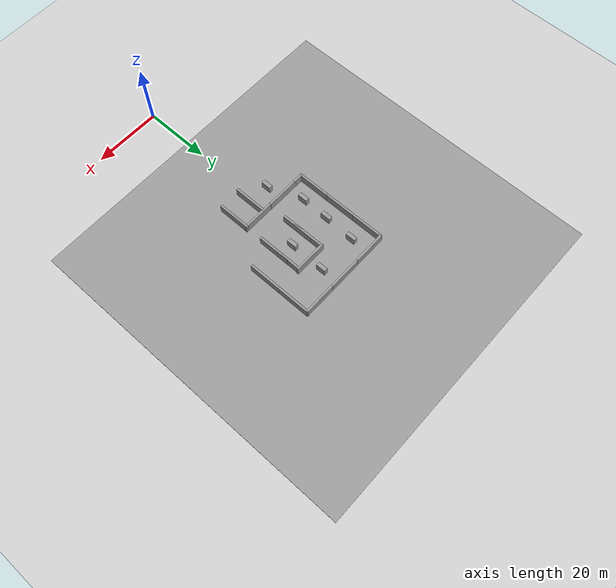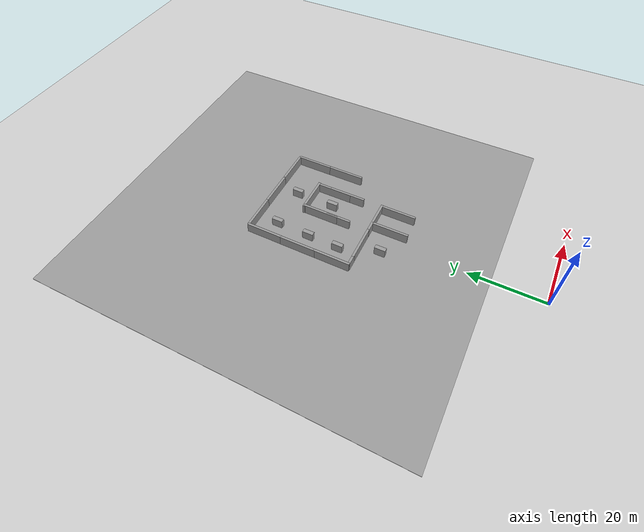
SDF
<sdf version="1.7">
 <world name="default">
  <model name="ground_plane">
   <static>1</static>
   <link name="link">
    <collision name="collision">
     <geometry><plane><normal>0 0 1</normal><size>100 100</size></plane></geometry>
     <surface><friction><ode><mu>100</mu><mu2>50</mu2></ode></friction></surface>
    </collision>
    <visual name="visual">
     <cast_shadows>0</cast_shadows>
     <geometry><plane><normal>0 0 1</normal><size>100 100</size></plane></geometry>
     <material>
      <script><uri>file://media/materials/scripts/gazebo.material</uri><name>Gazebo/Grey</name></script>
     </material>
    </visual>
   </link>
  </model>
  <model name="ground_plane_1">
   <static>1</static>
   <link name="link">
    <collision name="collision">
     <geometry><plane><normal>0 0 1</normal><size>100 100</size></plane></geometry>
     <surface>
      <contact><collide_bitmask>65535</collide_bitmask></contact>
      <friction><ode><mu>100</mu><mu2>50</mu2></ode></friction>
     </surface>
    </collision>
    <visual name="visual">
     <cast_shadows>0</cast_shadows>
     <geometry><plane><normal>0 0 1</normal><size>100 100</size></plane></geometry>
     <material>
      <script><uri>file://media/materials/scripts/gazebo.material</uri><name>Gazebo/Grey</name></script>
     </material>
    </visual>
   </link>
   <pose>-0.115157 63.9735 0 0 -0 0</pose>
  </model>
  <model name="grey_wall_hou_clone_clone_3_clone_0_clone_1_clone">
   <link name="link">
    <pose>0 0 1.37589 0 -0 0</pose>
    <inertial>
     <inertia><ixx>0</ixx><ixy>0</ixy><ixz>0</ixz><iyy>0</iyy><iyz>0</iyz><izz>0</izz></inertia>
     <mass>0</mass>
    </inertial>
    <visual name="visual">
     <cast_shadows>0</cast_shadows>
     <geometry><box><size>9.82221 0.642976 2.8</size></box></geometry>
     <material>
      <script>
       <uri>model://grey_wall/materials/scripts</uri>
       <uri>model://grey_wall/materials/textures</uri>
       <name>vrc/grey_wall</name>
      </script>
      <shader type="pixel"><normal_map>__default__</normal_map></shader>
      <ambient>1 1 1 1</ambient>
      <diffuse>1 1 1 1</diffuse>
      <specular>0 0 0 1</specular>
      <emissive>0 0 0 1</emissive>
     </material>
    </visual>
    <collision name="collision">
     <geometry><box><size>9.82221 0.642976 2.8</size></box></geometry>
     <surface>
      <friction>
       <ode><mu>1</mu><mu2>1</mu2><fdir1>0 0 0</fdir1><slip1>0</slip1><slip2>0</slip2></ode>
       <torsional>
        <coefficient>1</coefficient>
        <patch_radius>0</patch_radius>
        <surface_radius>0</surface_radius>
        <use_patch_radius>1</use_patch_radius>
        <ode><slip>0</slip></ode>
       </torsional>
      </friction>
      <bounce><restitution_coefficient>0</restitution_coefficient><threshold>1e+06</threshold></bounce>
      <contact>
       <collide_without_contact>0</collide_without_contact>
       <collide_without_contact_bitmask>1</collide_without_contact_bitmask>
       <collide_bitmask>1</collide_bitmask>
       <ode>
        <soft_cfm>0</soft_cfm>
        <soft_erp>0.2</soft_erp>
        <kp>1e+13</kp>
        <kd>1</kd>
        <max_vel>0.01</max_vel>
        <min_depth>0</min_depth>
       </ode>
       <bullet>
        <split_impulse>1</split_impulse>
        <split_impulse_penetration_threshold>-0.01</split_impulse_penetration_threshold>
        <soft_cfm>0</soft_cfm>
        <soft_erp>0.2</soft_erp>
        <kp>1e+13</kp>
        <kd>1</kd>
       </bullet>
      </contact>
     </surface>
    </collision>
   </link>
   <static>1</static>
   <pose>-0.06228 60.209 0 0 0 -1.56855</pose>
  </model>
  <model name="grey_wall_hou_clone_clone_3_clone_0_clone_1_clone_0">
   <link name="link">
    <pose>0 0 1.37589 0 -0 0</pose>
    <inertial>
     <inertia><ixx>0</ixx><ixy>0</ixy><ixz>0</ixz><iyy>0</iyy><iyz>0</iyz><izz>0</izz></inertia>
     <mass>0</mass>
    </inertial>
    <visual name="visual">
     <cast_shadows>0</cast_shadows>
     <geometry><box><size>9.82221 0.642976 2.8</size></box></geometry>
     <material>
      <script>
       <uri>model://grey_wall/materials/scripts</uri>
       <uri>model://grey_wall/materials/textures</uri>
       <name>vrc/grey_wall</name>
      </script>
      <shader type="pixel"><normal_map>__default__</normal_map></shader>
      <ambient>1 1 1 1</ambient>
      <diffuse>1 1 1 1</diffuse>
      <specular>0 0 0 1</specular>
      <emissive>0 0 0 1</emissive>
     </material>
    </visual>
    <collision name="collision">
     <geometry><box><size>9.82221 0.642976 2.8</size></box></geometry>
     <surface>
      <friction>
       <ode><mu>1</mu><mu2>1</mu2><fdir1>0 0 0</fdir1><slip1>0</slip1><slip2>0</slip2></ode>
       <torsional>
        <coefficient>1</coefficient>
        <patch_radius>0</patch_radius>
        <surface_radius>0</surface_radius>
        <use_patch_radius>1</use_patch_radius>
        <ode><slip>0</slip></ode>
       </torsional>
      </friction>
      <bounce><restitution_coefficient>0</restitution_coefficient><threshold>1e+06</threshold></bounce>
      <contact>
       <collide_without_contact>0</collide_without_contact>
       <collide_without_contact_bitmask>1</collide_without_contact_bitmask>
       <collide_bitmask>1</collide_bitmask>
       <ode>
        <soft_cfm>0</soft_cfm>
        <soft_erp>0.2</soft_erp>
        <kp>1e+13</kp>
        <kd>1</kd>
        <max_vel>0.01</max_vel>
        <min_depth>0</min_depth>
       </ode>
       <bullet>
        <split_impulse>1</split_impulse>
        <split_impulse_penetration_threshold>-0.01</split_impulse_penetration_threshold>
        <soft_cfm>0</soft_cfm>
        <soft_erp>0.2</soft_erp>
        <kp>1e+13</kp>
        <kd>1</kd>
       </bullet>
      </contact>
     </surface>
    </collision>
   </link>
   <static>1</static>
   <pose>16.3465 60.2633 0 0 0 -1.56855</pose>
  </model>
  <model name="grey_wall_hou_clone_clone_0_clone_1">
   <link name="link">
    <pose>0 0 1.37589 0 -0 0</pose>
    <inertial>
     <inertia><ixx>0</ixx><ixy>0</ixy><ixz>0</ixz><iyy>0</iyy><iyz>0</iyz><izz>0</izz></inertia>
     <mass>0</mass>
    </inertial>
    <visual name="visual">
     <cast_shadows>0</cast_shadows>
     <geometry><box><size>9.82221 0.642976 2.8</size></box></geometry>
     <material>
      <script>
       <uri>model://grey_wall/materials/scripts</uri>
       <uri>model://grey_wall/materials/textures</uri>
       <name>vrc/grey_wall</name>
      </script>
      <shader type="pixel"><normal_map>__default__</normal_map></shader>
      <ambient>1 1 1 1</ambient>
      <diffuse>1 1 1 1</diffuse>
      <specular>0 0 0 1</specular>
      <emissive>0 0 0 1</emissive>
     </material>
    </visual>
    <collision name="collision">
     <geometry><box><size>9.82221 0.642976 2.8</size></box></geometry>
     <surface>
      <friction>
       <ode><mu>1</mu><mu2>1</mu2><fdir1>0 0 0</fdir1><slip1>0</slip1><slip2>0</slip2></ode>
       <torsional>
        <coefficient>1</coefficient>
        <patch_radius>0</patch_radius>
        <surface_radius>0</surface_radius>
        <use_patch_radius>1</use_patch_radius>
        <ode><slip>0</slip></ode>
       </torsional>
      </friction>
      <bounce><restitution_coefficient>0</restitution_coefficient><threshold>1e+06</threshold></bounce>
      <contact>
       <collide_without_contact>0</collide_without_contact>
       <collide_without_contact_bitmask>1</collide_without_contact_bitmask>
       <collide_bitmask>1</collide_bitmask>
       <ode>
        <soft_cfm>0</soft_cfm>
        <soft_erp>0.2</soft_erp>
        <kp>1e+13</kp>
        <kd>1</kd>
        <max_vel>0.01</max_vel>
        <min_depth>0</min_depth>
       </ode>
       <bullet>
        <split_impulse>1</split_impulse>
        <split_impulse_penetration_threshold>-0.01</split_impulse_penetration_threshold>
        <soft_cfm>0</soft_cfm>
        <soft_erp>0.2</soft_erp>
        <kp>1e+13</kp>
        <kd>1</kd>
       </bullet>
      </contact>
     </surface>
    </collision>
   </link>
   <static>1</static>
   <pose>8.93321 41.7664 0 0 0 -1.56855</pose>
  </model>
  <model name="grey_wall_hou_clone_clone_clone_4_clone_clone_clone">
   <link name="link">
    <pose>0 0 1.37589 0 -0 0</pose>
    <inertial>
     <inertia><ixx>0</ixx><ixy>0</ixy><ixz>0</ixz><iyy>0</iyy><iyz>0</iyz><izz>0</izz></inertia>
     <mass>0</mass>
    </inertial>
    <visual name="visual">
     <cast_shadows>0</cast_shadows>
     <geometry><box><size>9.82221 0.642976 2.8</size></box></geometry>
     <material>
      <script>
       <uri>model://grey_wall/materials/scripts</uri>
       <uri>model://grey_wall/materials/textures</uri>
       <name>vrc/grey_wall</name>
      </script>
      <shader type="pixel"><normal_map>__default__</normal_map></shader>
      <ambient>1 1 1 1</ambient>
      <diffuse>1 1 1 1</diffuse>
      <specular>0 0 0 1</specular>
      <emissive>0 0 0 1</emissive>
     </material>
    </visual>
    <collision name="collision">
     <geometry><box><size>9.82221 0.642976 2.8</size></box></geometry>
     <surface>
      <friction>
       <ode><mu>1</mu><mu2>1</mu2><fdir1>0 0 0</fdir1><slip1>0</slip1><slip2>0</slip2></ode>
       <torsional>
        <coefficient>1</coefficient>
        <patch_radius>0</patch_radius>
        <surface_radius>0</surface_radius>
        <use_patch_radius>1</use_patch_radius>
        <ode><slip>0</slip></ode>
       </torsional>
      </friction>
      <bounce><restitution_coefficient>0</restitution_coefficient><threshold>1e+06</threshold></bounce>
      <contact>
       <collide_without_contact>0</collide_without_contact>
       <collide_without_contact_bitmask>1</collide_without_contact_bitmask>
       <collide_bitmask>1</collide_bitmask>
       <ode>
        <soft_cfm>0</soft_cfm>
        <soft_erp>0.2</soft_erp>
        <kp>1e+13</kp>
        <kd>1</kd>
        <max_vel>0.01</max_vel>
        <min_depth>0</min_depth>
       </ode>
       <bullet>
        <split_impulse>1</split_impulse>
        <split_impulse_penetration_threshold>-0.01</split_impulse_penetration_threshold>
        <soft_cfm>0</soft_cfm>
        <soft_erp>0.2</soft_erp>
        <kp>1e+13</kp>
        <kd>1</kd>
       </bullet>
      </contact>
     </surface>
    </collision>
   </link>
   <static>1</static>
   <pose>4.39249 46.339 0 0 -0 0</pose>
  </model>
  <model name="grey_wall_hou_clone_clone_clone_4_clone_clone_clone_0">
   <link name="link">
    <pose>0 0 1.37589 0 -0 0</pose>
    <inertial>
     <inertia><ixx>0</ixx><ixy>0</ixy><ixz>0</ixz><iyy>0</iyy><iyz>0</iyz><izz>0</izz></inertia>
     <mass>0</mass>
    </inertial>
    <visual name="visual">
     <cast_shadows>0</cast_shadows>
     <geometry><box><size>9.82221 0.642976 2.8</size></box></geometry>
     <material>
      <script>
       <uri>model://grey_wall/materials/scripts</uri>
       <uri>model://grey_wall/materials/textures</uri>
       <name>vrc/grey_wall</name>
      </script>
      <shader type="pixel"><normal_map>__default__</normal_map></shader>
      <ambient>1 1 1 1</ambient>
      <diffuse>1 1 1 1</diffuse>
      <specular>0 0 0 1</specular>
      <emissive>0 0 0 1</emissive>
     </material>
    </visual>
    <collision name="collision">
     <geometry><box><size>9.82221 0.642976 2.8</size></box></geometry>
     <surface>
      <friction>
       <ode><mu>1</mu><mu2>1</mu2><fdir1>0 0 0</fdir1><slip1>0</slip1><slip2>0</slip2></ode>
       <torsional>
        <coefficient>1</coefficient>
        <patch_radius>0</patch_radius>
        <surface_radius>0</surface_radius>
        <use_patch_radius>1</use_patch_radius>
        <ode><slip>0</slip></ode>
       </torsional>
      </friction>
      <bounce><restitution_coefficient>0</restitution_coefficient><threshold>1e+06</threshold></bounce>
      <contact>
       <collide_without_contact>0</collide_without_contact>
       <collide_without_contact_bitmask>1</collide_without_contact_bitmask>
       <collide_bitmask>1</collide_bitmask>
       <ode>
        <soft_cfm>0</soft_cfm>
        <soft_erp>0.2</soft_erp>
        <kp>1e+13</kp>
        <kd>1</kd>
        <max_vel>0.01</max_vel>
        <min_depth>0</min_depth>
       </ode>
       <bullet>
        <split_impulse>1</split_impulse>
        <split_impulse_penetration_threshold>-0.01</split_impulse_penetration_threshold>
        <soft_cfm>0</soft_cfm>
        <soft_erp>0.2</soft_erp>
        <kp>1e+13</kp>
        <kd>1</kd>
       </bullet>
      </contact>
     </surface>
    </collision>
   </link>
   <static>1</static>
   <pose>-7.74432 74.7859 0 0 -0 0</pose>
  </model>
  <model name="grey_wall_hou_clone_clone_clone_4_clone_clone_0_clone_3_clone">
   <link name="link">
    <pose>0 0 1.37589 0 -0 0</pose>
    <inertial>
     <inertia><ixx>0</ixx><ixy>0</ixy><ixz>0</ixz><iyy>0</iyy><iyz>0</iyz><izz>0</izz></inertia>
     <mass>0</mass>
    </inertial>
    <visual name="visual">
     <cast_shadows>0</cast_shadows>
     <geometry><box><size>9.82221 0.642976 2.8</size></box></geometry>
     <material>
      <script>
       <uri>model://grey_wall/materials/scripts</uri>
       <uri>model://grey_wall/materials/textures</uri>
       <name>vrc/grey_wall</name>
      </script>
      <shader type="pixel"><normal_map>__default__</normal_map></shader>
      <ambient>1 1 1 1</ambient>
      <diffuse>1 1 1 1</diffuse>
      <specular>0 0 0 1</specular>
      <emissive>0 0 0 1</emissive>
     </material>
    </visual>
    <collision name="collision">
     <geometry><box><size>9.82221 0.642976 2.8</size></box></geometry>
     <surface>
      <friction>
       <ode><mu>1</mu><mu2>1</mu2><fdir1>0 0 0</fdir1><slip1>0</slip1><slip2>0</slip2></ode>
       <torsional>
        <coefficient>1</coefficient>
        <patch_radius>0</patch_radius>
        <surface_radius>0</surface_radius>
        <use_patch_radius>1</use_patch_radius>
        <ode><slip>0</slip></ode>
       </torsional>
      </friction>
      <bounce><restitution_coefficient>0</restitution_coefficient><threshold>1e+06</threshold></bounce>
      <contact>
       <collide_without_contact>0</collide_without_contact>
       <collide_without_contact_bitmask>1</collide_without_contact_bitmask>
       <collide_bitmask>1</collide_bitmask>
       <ode>
        <soft_cfm>0</soft_cfm>
        <soft_erp>0.2</soft_erp>
        <kp>1e+13</kp>
        <kd>1</kd>
        <max_vel>0.01</max_vel>
        <min_depth>0</min_depth>
       </ode>
       <bullet>
        <split_impulse>1</split_impulse>
        <split_impulse_penetration_threshold>-0.01</split_impulse_penetration_threshold>
        <soft_cfm>0</soft_cfm>
        <soft_erp>0.2</soft_erp>
        <kp>1e+13</kp>
        <kd>1</kd>
       </bullet>
      </contact>
     </surface>
    </collision>
   </link>
   <static>1</static>
   <pose>-5.13766 46.3635 0 0 -0 0</pose>
  </model>
  <model name="grey_wall_hou_clone_clone_3_clone_5_clone">
   <link name="link">
    <pose>0 0 1.37589 0 -0 0</pose>
    <inertial>
     <inertia><ixx>0</ixx><ixy>0</ixy><ixz>0</ixz><iyy>0</iyy><iyz>0</iyz><izz>0</izz></inertia>
     <mass>0</mass>
    </inertial>
    <visual name="visual">
     <cast_shadows>0</cast_shadows>
     <geometry><box><size>9.82221 0.642976 2.8</size></box></geometry>
     <material>
      <script>
       <uri>model://grey_wall/materials/scripts</uri>
       <uri>model://grey_wall/materials/textures</uri>
       <name>vrc/grey_wall</name>
      </script>
      <shader type="pixel"><normal_map>__default__</normal_map></shader>
      <ambient>1 1 1 1</ambient>
      <diffuse>1 1 1 1</diffuse>
      <specular>0 0 0 1</specular>
      <emissive>0 0 0 1</emissive>
     </material>
    </visual>
    <collision name="collision">
     <geometry><box><size>9.82221 0.642976 2.8</size></box></geometry>
     <surface>
      <friction>
       <ode><mu>1</mu><mu2>1</mu2><fdir1>0 0 0</fdir1><slip1>0</slip1><slip2>0</slip2></ode>
       <torsional>
        <coefficient>1</coefficient>
        <patch_radius>0</patch_radius>
        <surface_radius>0</surface_radius>
        <use_patch_radius>1</use_patch_radius>
        <ode><slip>0</slip></ode>
       </torsional>
      </friction>
      <bounce><restitution_coefficient>0</restitution_coefficient><threshold>1e+06</threshold></bounce>
      <contact>
       <collide_without_contact>0</collide_without_contact>
       <collide_without_contact_bitmask>1</collide_without_contact_bitmask>
       <collide_bitmask>1</collide_bitmask>
       <ode>
        <soft_cfm>0</soft_cfm>
        <soft_erp>0.2</soft_erp>
        <kp>1e+13</kp>
        <kd>1</kd>
        <max_vel>0.01</max_vel>
        <min_depth>0</min_depth>
       </ode>
       <bullet>
        <split_impulse>1</split_impulse>
        <split_impulse_penetration_threshold>-0.01</split_impulse_penetration_threshold>
        <soft_cfm>0</soft_cfm>
        <soft_erp>0.2</soft_erp>
        <kp>1e+13</kp>
        <kd>1</kd>
       </bullet>
      </contact>
     </surface>
    </collision>
   </link>
   <static>1</static>
   <pose>2.36653 41.3889 0 0 0 -1.56855</pose>
  </model>
  <model name="unit_box_clone_2_clone_0_clone_1_clone_3">
   <pose>-4.2929 41.3013 1.23849 -4e-06 0 0.001916</pose>
   <link name="link">
    <inertial>
     <mass>1</mass>
     <inertia>
      <ixx>0.166667</ixx>
      <ixy>0</ixy>
      <ixz>0</ixz>
      <iyy>0.166667</iyy>
      <iyz>0</iyz>
      <izz>0.166667</izz>
     </inertia>
    </inertial>
    <collision name="collision"><geometry><box><size>1.12952 2.91492 2.47699</size></box></geometry></collision>
    <visual name="visual">
     <geometry><box><size>1.12952 2.91492 2.47699</size></box></geometry>
     <material>
      <script><name>Gazebo/Grey</name><uri>file://media/materials/scripts/gazebo.material</uri></script>
     </material>
    </visual>
   </link>
  </model>
  <model name="grey_wall_hou_clone_clone_3_clone_0_clone_1_clone_0_clone_0">
   <link name="link">
    <pose>0 0 1.37589 0 -0 0</pose>
    <inertial>
     <inertia><ixx>0</ixx><ixy>0</ixy><ixz>0</ixz><iyy>0</iyy><iyz>0</iyz><izz>0</izz></inertia>
     <mass>0</mass>
    </inertial>
    <visual name="visual">
     <cast_shadows>0</cast_shadows>
     <geometry><box><size>9.82221 0.642976 2.8</size></box></geometry>
     <material>
      <script>
       <uri>model://grey_wall/materials/scripts</uri>
       <uri>model://grey_wall/materials/textures</uri>
       <name>vrc/grey_wall</name>
      </script>
      <shader type="pixel"><normal_map>__default__</normal_map></shader>
      <ambient>1 1 1 1</ambient>
      <diffuse>1 1 1 1</diffuse>
      <specular>0 0 0 1</specular>
      <emissive>0 0 0 1</emissive>
     </material>
    </visual>
    <collision name="collision">
     <geometry><box><size>9.82221 0.642976 2.8</size></box></geometry>
     <surface>
      <friction>
       <ode><mu>1</mu><mu2>1</mu2><fdir1>0 0 0</fdir1><slip1>0</slip1><slip2>0</slip2></ode>
       <torsional>
        <coefficient>1</coefficient>
        <patch_radius>0</patch_radius>
        <surface_radius>0</surface_radius>
        <use_patch_radius>1</use_patch_radius>
        <ode><slip>0</slip></ode>
       </torsional>
      </friction>
      <bounce><restitution_coefficient>0</restitution_coefficient><threshold>1e+06</threshold></bounce>
      <contact>
       <collide_without_contact>0</collide_without_contact>
       <collide_without_contact_bitmask>1</collide_without_contact_bitmask>
       <collide_bitmask>1</collide_bitmask>
       <ode>
        <soft_cfm>0</soft_cfm>
        <soft_erp>0.2</soft_erp>
        <kp>1e+13</kp>
        <kd>1</kd>
        <max_vel>0.01</max_vel>
        <min_depth>0</min_depth>
       </ode>
       <bullet>
        <split_impulse>1</split_impulse>
        <split_impulse_penetration_threshold>-0.01</split_impulse_penetration_threshold>
        <soft_cfm>0</soft_cfm>
        <soft_erp>0.2</soft_erp>
        <kp>1e+13</kp>
        <kd>1</kd>
       </bullet>
      </contact>
     </surface>
    </collision>
   </link>
   <static>1</static>
   <pose>-12.6198 60.4467 0 0 0 -1.56855</pose>
  </model>
  <model name="grey_wall_hou_clone_clone_3_clone_0_clone_1_clone_0_clone_1">
   <link name="link">
    <pose>0 0 1.37589 0 -0 0</pose>
    <inertial>
     <inertia><ixx>0</ixx><ixy>0</ixy><ixz>0</ixz><iyy>0</iyy><iyz>0</iyz><izz>0</izz></inertia>
     <mass>0</mass>
    </inertial>
    <visual name="visual">
     <cast_shadows>0</cast_shadows>
     <geometry><box><size>9.82221 0.642976 2.8</size></box></geometry>
     <material>
      <script>
       <uri>model://grey_wall/materials/scripts</uri>
       <uri>model://grey_wall/materials/textures</uri>
       <name>vrc/grey_wall</name>
      </script>
      <shader type="pixel"><normal_map>__default__</normal_map></shader>
      <ambient>1 1 1 1</ambient>
      <diffuse>1 1 1 1</diffuse>
      <specular>0 0 0 1</specular>
      <emissive>0 0 0 1</emissive>
     </material>
    </visual>
    <collision name="collision">
     <geometry><box><size>9.82221 0.642976 2.8</size></box></geometry>
     <surface>
      <friction>
       <ode><mu>1</mu><mu2>1</mu2><fdir1>0 0 0</fdir1><slip1>0</slip1><slip2>0</slip2></ode>
       <torsional>
        <coefficient>1</coefficient>
        <patch_radius>0</patch_radius>
        <surface_radius>0</surface_radius>
        <use_patch_radius>1</use_patch_radius>
        <ode><slip>0</slip></ode>
       </torsional>
      </friction>
      <bounce><restitution_coefficient>0</restitution_coefficient><threshold>1e+06</threshold></bounce>
      <contact>
       <collide_without_contact>0</collide_without_contact>
       <collide_without_contact_bitmask>1</collide_without_contact_bitmask>
       <collide_bitmask>1</collide_bitmask>
       <ode>
        <soft_cfm>0</soft_cfm>
        <soft_erp>0.2</soft_erp>
        <kp>1e+13</kp>
        <kd>1</kd>
        <max_vel>0.01</max_vel>
        <min_depth>0</min_depth>
       </ode>
       <bullet>
        <split_impulse>1</split_impulse>
        <split_impulse_penetration_threshold>-0.01</split_impulse_penetration_threshold>
        <soft_cfm>0</soft_cfm>
        <soft_erp>0.2</soft_erp>
        <kp>1e+13</kp>
        <kd>1</kd>
       </bullet>
      </contact>
     </surface>
    </collision>
   </link>
   <static>1</static>
   <pose>-12.6258 70.0961 0 0 0 -1.56855</pose>
  </model>
  <model name="grey_wall_hou_clone_clone_3_clone_0_clone_1_clone_0_clone_2">
   <link name="link">
    <pose>0 0 1.37589 0 -0 0</pose>
    <inertial>
     <inertia><ixx>0</ixx><ixy>0</ixy><ixz>0</ixz><iyy>0</iyy><iyz>0</iyz><izz>0</izz></inertia>
     <mass>0</mass>
    </inertial>
    <visual name="visual">
     <cast_shadows>0</cast_shadows>
     <geometry><box><size>9.82221 0.642976 2.8</size></box></geometry>
     <material>
      <script>
       <uri>model://grey_wall/materials/scripts</uri>
       <uri>model://grey_wall/materials/textures</uri>
       <name>vrc/grey_wall</name>
      </script>
      <shader type="pixel"><normal_map>__default__</normal_map></shader>
      <ambient>1 1 1 1</ambient>
      <diffuse>1 1 1 1</diffuse>
      <specular>0 0 0 1</specular>
      <emissive>0 0 0 1</emissive>
     </material>
    </visual>
    <collision name="collision">
     <geometry><box><size>9.82221 0.642976 2.8</size></box></geometry>
     <surface>
      <friction>
       <ode><mu>1</mu><mu2>1</mu2><fdir1>0 0 0</fdir1><slip1>0</slip1><slip2>0</slip2></ode>
       <torsional>
        <coefficient>1</coefficient>
        <patch_radius>0</patch_radius>
        <surface_radius>0</surface_radius>
        <use_patch_radius>1</use_patch_radius>
        <ode><slip>0</slip></ode>
       </torsional>
      </friction>
      <bounce><restitution_coefficient>0</restitution_coefficient><threshold>1e+06</threshold></bounce>
      <contact>
       <collide_without_contact>0</collide_without_contact>
       <collide_without_contact_bitmask>1</collide_without_contact_bitmask>
       <collide_bitmask>1</collide_bitmask>
       <ode>
        <soft_cfm>0</soft_cfm>
        <soft_erp>0.2</soft_erp>
        <kp>1e+13</kp>
        <kd>1</kd>
        <max_vel>0.01</max_vel>
        <min_depth>0</min_depth>
       </ode>
       <bullet>
        <split_impulse>1</split_impulse>
        <split_impulse_penetration_threshold>-0.01</split_impulse_penetration_threshold>
        <soft_cfm>0</soft_cfm>
        <soft_erp>0.2</soft_erp>
        <kp>1e+13</kp>
        <kd>1</kd>
       </bullet>
      </contact>
     </surface>
    </collision>
   </link>
   <static>1</static>
   <pose>8.83379 60.3561 0 0 0 -1.56855</pose>
  </model>
  <model name="grey_wall_hou_clone_clone_3_clone_0_clone_1_clone_0_clone_3">
   <link name="link">
    <pose>0 0 1.37589 0 -0 0</pose>
    <inertial>
     <inertia><ixx>0</ixx><ixy>0</ixy><ixz>0</ixz><iyy>0</iyy><iyz>0</iyz><izz>0</izz></inertia>
     <mass>0</mass>
    </inertial>
    <visual name="visual">
     <cast_shadows>0</cast_shadows>
     <geometry><box><size>9.82221 0.642976 2.8</size></box></geometry>
     <material>
      <script>
       <uri>model://grey_wall/materials/scripts</uri>
       <uri>model://grey_wall/materials/textures</uri>
       <name>vrc/grey_wall</name>
      </script>
      <shader type="pixel"><normal_map>__default__</normal_map></shader>
      <ambient>1 1 1 1</ambient>
      <diffuse>1 1 1 1</diffuse>
      <specular>0 0 0 1</specular>
      <emissive>0 0 0 1</emissive>
     </material>
    </visual>
    <collision name="collision">
     <geometry><box><size>9.82221 0.642976 2.8</size></box></geometry>
     <surface>
      <friction>
       <ode><mu>1</mu><mu2>1</mu2><fdir1>0 0 0</fdir1><slip1>0</slip1><slip2>0</slip2></ode>
       <torsional>
        <coefficient>1</coefficient>
        <patch_radius>0</patch_radius>
        <surface_radius>0</surface_radius>
        <use_patch_radius>1</use_patch_radius>
        <ode><slip>0</slip></ode>
       </torsional>
      </friction>
      <bounce><restitution_coefficient>0</restitution_coefficient><threshold>1e+06</threshold></bounce>
      <contact>
       <collide_without_contact>0</collide_without_contact>
       <collide_without_contact_bitmask>1</collide_without_contact_bitmask>
       <collide_bitmask>1</collide_bitmask>
       <ode>
        <soft_cfm>0</soft_cfm>
        <soft_erp>0.2</soft_erp>
        <kp>1e+13</kp>
        <kd>1</kd>
        <max_vel>0.01</max_vel>
        <min_depth>0</min_depth>
       </ode>
       <bullet>
        <split_impulse>1</split_impulse>
        <split_impulse_penetration_threshold>-0.01</split_impulse_penetration_threshold>
        <soft_cfm>0</soft_cfm>
        <soft_erp>0.2</soft_erp>
        <kp>1e+13</kp>
        <kd>1</kd>
       </bullet>
      </contact>
     </surface>
    </collision>
   </link>
   <static>1</static>
   <pose>-12.591 51.0386 0 0 0 -1.56855</pose>
  </model>
  <model name="grey_wall_hou_clone_clone_clone_4_clone_clone_clone_0_clone_0">
   <link name="link">
    <pose>0 0 1.37589 0 -0 0</pose>
    <inertial>
     <inertia><ixx>0</ixx><ixy>0</ixy><ixz>0</ixz><iyy>0</iyy><iyz>0</iyz><izz>0</izz></inertia>
     <mass>0</mass>
    </inertial>
    <visual name="visual">
     <cast_shadows>0</cast_shadows>
     <geometry><box><size>9.82221 0.642976 2.8</size></box></geometry>
     <material>
      <script>
       <uri>model://grey_wall/materials/scripts</uri>
       <uri>model://grey_wall/materials/textures</uri>
       <name>vrc/grey_wall</name>
      </script>
      <shader type="pixel"><normal_map>__default__</normal_map></shader>
      <ambient>1 1 1 1</ambient>
      <diffuse>1 1 1 1</diffuse>
      <specular>0 0 0 1</specular>
      <emissive>0 0 0 1</emissive>
     </material>
    </visual>
    <collision name="collision">
     <geometry><box><size>9.82221 0.642976 2.8</size></box></geometry>
     <surface>
      <friction>
       <ode><mu>1</mu><mu2>1</mu2><fdir1>0 0 0</fdir1><slip1>0</slip1><slip2>0</slip2></ode>
       <torsional>
        <coefficient>1</coefficient>
        <patch_radius>0</patch_radius>
        <surface_radius>0</surface_radius>
        <use_patch_radius>1</use_patch_radius>
        <ode><slip>0</slip></ode>
       </torsional>
      </friction>
      <bounce><restitution_coefficient>0</restitution_coefficient><threshold>1e+06</threshold></bounce>
      <contact>
       <collide_without_contact>0</collide_without_contact>
       <collide_without_contact_bitmask>1</collide_without_contact_bitmask>
       <collide_bitmask>1</collide_bitmask>
       <ode>
        <soft_cfm>0</soft_cfm>
        <soft_erp>0.2</soft_erp>
        <kp>1e+13</kp>
        <kd>1</kd>
        <max_vel>0.01</max_vel>
        <min_depth>0</min_depth>
       </ode>
       <bullet>
        <split_impulse>1</split_impulse>
        <split_impulse_penetration_threshold>-0.01</split_impulse_penetration_threshold>
        <soft_cfm>0</soft_cfm>
        <soft_erp>0.2</soft_erp>
        <kp>1e+13</kp>
        <kd>1</kd>
       </bullet>
      </contact>
     </surface>
    </collision>
   </link>
   <static>1</static>
   <pose>1.94759 74.8061 0 0 -0 0</pose>
  </model>
  <model name="grey_wall_hou_clone_clone_clone_4_clone_clone_clone_0_clone_1">
   <link name="link">
    <pose>0 0 1.37589 0 -0 0</pose>
    <inertial>
     <inertia><ixx>0</ixx><ixy>0</ixy><ixz>0</ixz><iyy>0</iyy><iyz>0</iyz><izz>0</izz></inertia>
     <mass>0</mass>
    </inertial>
    <visual name="visual">
     <cast_shadows>0</cast_shadows>
     <geometry><box><size>9.82221 0.642976 2.8</size></box></geometry>
     <material>
      <script>
       <uri>model://grey_wall/materials/scripts</uri>
       <uri>model://grey_wall/materials/textures</uri>
       <name>vrc/grey_wall</name>
      </script>
      <shader type="pixel"><normal_map>__default__</normal_map></shader>
      <ambient>1 1 1 1</ambient>
      <diffuse>1 1 1 1</diffuse>
      <specular>0 0 0 1</specular>
      <emissive>0 0 0 1</emissive>
     </material>
    </visual>
    <collision name="collision">
     <geometry><box><size>9.82221 0.642976 2.8</size></box></geometry>
     <surface>
      <friction>
       <ode><mu>1</mu><mu2>1</mu2><fdir1>0 0 0</fdir1><slip1>0</slip1><slip2>0</slip2></ode>
       <torsional>
        <coefficient>1</coefficient>
        <patch_radius>0</patch_radius>
        <surface_radius>0</surface_radius>
        <use_patch_radius>1</use_patch_radius>
        <ode><slip>0</slip></ode>
       </torsional>
      </friction>
      <bounce><restitution_coefficient>0</restitution_coefficient><threshold>1e+06</threshold></bounce>
      <contact>
       <collide_without_contact>0</collide_without_contact>
       <collide_without_contact_bitmask>1</collide_without_contact_bitmask>
       <collide_bitmask>1</collide_bitmask>
       <ode>
        <soft_cfm>0</soft_cfm>
        <soft_erp>0.2</soft_erp>
        <kp>1e+13</kp>
        <kd>1</kd>
        <max_vel>0.01</max_vel>
        <min_depth>0</min_depth>
       </ode>
       <bullet>
        <split_impulse>1</split_impulse>
        <split_impulse_penetration_threshold>-0.01</split_impulse_penetration_threshold>
        <soft_cfm>0</soft_cfm>
        <soft_erp>0.2</soft_erp>
        <kp>1e+13</kp>
        <kd>1</kd>
       </bullet>
      </contact>
     </surface>
    </collision>
   </link>
   <static>1</static>
   <pose>11.4874 74.8034 0 0 -0 0</pose>
  </model>
  <model name="grey_wall_hou_clone_clone_clone_4_clone_clone_clone_0_clone_2">
   <link name="link">
    <pose>0 0 1.37589 0 -0 0</pose>
    <inertial>
     <inertia><ixx>0</ixx><ixy>0</ixy><ixz>0</ixz><iyy>0</iyy><iyz>0</iyz><izz>0</izz></inertia>
     <mass>0</mass>
    </inertial>
    <visual name="visual">
     <cast_shadows>0</cast_shadows>
     <geometry><box><size>9.82221 0.642976 2.8</size></box></geometry>
     <material>
      <script>
       <uri>model://grey_wall/materials/scripts</uri>
       <uri>model://grey_wall/materials/textures</uri>
       <name>vrc/grey_wall</name>
      </script>
      <shader type="pixel"><normal_map>__default__</normal_map></shader>
      <ambient>1 1 1 1</ambient>
      <diffuse>1 1 1 1</diffuse>
      <specular>0 0 0 1</specular>
      <emissive>0 0 0 1</emissive>
     </material>
    </visual>
    <collision name="collision">
     <geometry><box><size>9.82221 0.642976 2.8</size></box></geometry>
     <surface>
      <friction>
       <ode><mu>1</mu><mu2>1</mu2><fdir1>0 0 0</fdir1><slip1>0</slip1><slip2>0</slip2></ode>
       <torsional>
        <coefficient>1</coefficient>
        <patch_radius>0</patch_radius>
        <surface_radius>0</surface_radius>
        <use_patch_radius>1</use_patch_radius>
        <ode><slip>0</slip></ode>
       </torsional>
      </friction>
      <bounce><restitution_coefficient>0</restitution_coefficient><threshold>1e+06</threshold></bounce>
      <contact>
       <collide_without_contact>0</collide_without_contact>
       <collide_without_contact_bitmask>1</collide_without_contact_bitmask>
       <collide_bitmask>1</collide_bitmask>
       <ode>
        <soft_cfm>0</soft_cfm>
        <soft_erp>0.2</soft_erp>
        <kp>1e+13</kp>
        <kd>1</kd>
        <max_vel>0.01</max_vel>
        <min_depth>0</min_depth>
       </ode>
       <bullet>
        <split_impulse>1</split_impulse>
        <split_impulse_penetration_threshold>-0.01</split_impulse_penetration_threshold>
        <soft_cfm>0</soft_cfm>
        <soft_erp>0.2</soft_erp>
        <kp>1e+13</kp>
        <kd>1</kd>
       </bullet>
      </contact>
     </surface>
    </collision>
   </link>
   <static>1</static>
   <pose>4.39315 64.9818 0 0 -0 0</pose>
  </model>
  <model name="grey_wall_hou_clone_clone_3_clone_0_clone_1_clone_0_clone_clone">
   <link name="link">
    <pose>0 0 1.37589 0 -0 0</pose>
    <inertial>
     <inertia><ixx>0</ixx><ixy>0</ixy><ixz>0</ixz><iyy>0</iyy><iyz>0</iyz><izz>0</izz></inertia>
     <mass>0</mass>
    </inertial>
    <visual name="visual">
     <cast_shadows>0</cast_shadows>
     <geometry><box><size>9.82221 0.642976 2.8</size></box></geometry>
     <material>
      <script>
       <uri>model://grey_wall/materials/scripts</uri>
       <uri>model://grey_wall/materials/textures</uri>
       <name>vrc/grey_wall</name>
      </script>
      <shader type="pixel"><normal_map>__default__</normal_map></shader>
      <ambient>1 1 1 1</ambient>
      <diffuse>1 1 1 1</diffuse>
      <specular>0 0 0 1</specular>
      <emissive>0 0 0 1</emissive>
     </material>
    </visual>
    <collision name="collision">
     <geometry><box><size>9.82221 0.642976 2.8</size></box></geometry>
     <surface>
      <friction>
       <ode><mu>1</mu><mu2>1</mu2><fdir1>0 0 0</fdir1><slip1>0</slip1><slip2>0</slip2></ode>
       <torsional>
        <coefficient>1</coefficient>
        <patch_radius>0</patch_radius>
        <surface_radius>0</surface_radius>
        <use_patch_radius>1</use_patch_radius>
        <ode><slip>0</slip></ode>
       </torsional>
      </friction>
      <bounce><restitution_coefficient>0</restitution_coefficient><threshold>1e+06</threshold></bounce>
      <contact>
       <collide_without_contact>0</collide_without_contact>
       <collide_without_contact_bitmask>1</collide_without_contact_bitmask>
       <collide_bitmask>1</collide_bitmask>
       <ode>
        <soft_cfm>0</soft_cfm>
        <soft_erp>0.2</soft_erp>
        <kp>1e+13</kp>
        <kd>1</kd>
        <max_vel>0.01</max_vel>
        <min_depth>0</min_depth>
       </ode>
       <bullet>
        <split_impulse>1</split_impulse>
        <split_impulse_penetration_threshold>-0.01</split_impulse_penetration_threshold>
        <soft_cfm>0</soft_cfm>
        <soft_erp>0.2</soft_erp>
        <kp>1e+13</kp>
        <kd>1</kd>
       </bullet>
      </contact>
     </surface>
    </collision>
   </link>
   <static>1</static>
   <pose>16.3169 70.0159 0 0 0 -1.56855</pose>
  </model>
  <model name="grey_wall_short_clone_clone">
   <link name="link">
    <pose>0 0 1.37589 0 -0 0</pose>
    <inertial>
     <inertia><ixx>0</ixx><ixy>0</ixy><ixz>0</ixz><iyy>0</iyy><iyz>0</iyz><izz>0</izz></inertia>
     <mass>0</mass>
    </inertial>
    <visual name="visual">
     <cast_shadows>0</cast_shadows>
     <geometry><box><size>3.01651 0.642976 2.8</size></box></geometry>
     <material>
      <script>
       <uri>model://grey_wall/materials/scripts</uri>
       <uri>model://grey_wall/materials/textures</uri>
       <name>vrc/grey_wall</name>
      </script>
      <shader type="pixel"><normal_map>__default__</normal_map></shader>
      <ambient>1 1 1 1</ambient>
      <diffuse>1 1 1 1</diffuse>
      <specular>0 0 0 1</specular>
      <emissive>0 0 0 1</emissive>
     </material>
    </visual>
    <collision name="collision">
     <geometry><box><size>3.01651 0.642976 2.8</size></box></geometry>
     <surface>
      <friction>
       <ode><mu>1</mu><mu2>1</mu2><fdir1>0 0 0</fdir1><slip1>0</slip1><slip2>0</slip2></ode>
       <torsional>
        <coefficient>1</coefficient>
        <patch_radius>0</patch_radius>
        <surface_radius>0</surface_radius>
        <use_patch_radius>1</use_patch_radius>
        <ode><slip>0</slip></ode>
       </torsional>
      </friction>
      <bounce><restitution_coefficient>0</restitution_coefficient><threshold>1e+06</threshold></bounce>
      <contact>
       <collide_without_contact>0</collide_without_contact>
       <collide_without_contact_bitmask>1</collide_without_contact_bitmask>
       <collide_bitmask>1</collide_bitmask>
       <ode>
        <soft_cfm>0</soft_cfm>
        <soft_erp>0.2</soft_erp>
        <kp>1e+13</kp>
        <kd>1</kd>
        <max_vel>0.01</max_vel>
        <min_depth>0</min_depth>
       </ode>
       <bullet>
        <split_impulse>1</split_impulse>
        <split_impulse_penetration_threshold>-0.01</split_impulse_penetration_threshold>
        <soft_cfm>0</soft_cfm>
        <soft_erp>0.2</soft_erp>
        <kp>1e+13</kp>
        <kd>1</kd>
       </bullet>
      </contact>
     </surface>
    </collision>
   </link>
   <static>1</static>
   <pose>-11.1512 46.3458 0 0 -0 0</pose>
  </model>
  <model name="unit_box_clone_2_clone_0_clone_1_clone_3_clone_0">
   <pose>-7.51617 68.975 1.23849 4e-06 -0 0.004718</pose>
   <link name="link">
    <inertial>
     <mass>1</mass>
     <inertia>
      <ixx>0.166667</ixx>
      <ixy>0</ixy>
      <ixz>0</ixz>
      <iyy>0.166667</iyy>
      <iyz>0</iyz>
      <izz>0.166667</izz>
     </inertia>
    </inertial>
    <collision name="collision"><geometry><box><size>1.12952 2.91492 2.47699</size></box></geometry></collision>
    <visual name="visual">
     <geometry><box><size>1.12952 2.91492 2.47699</size></box></geometry>
     <material>
      <script><name>Gazebo/Grey</name><uri>file://media/materials/scripts/gazebo.material</uri></script>
     </material>
    </visual>
   </link>
  </model>
  <model name="unit_box_clone_2_clone_0_clone_1_clone_3_clone_1">
   <pose>-7.83956 59.828 1.23849 4e-06 -0 0.000583</pose>
   <link name="link">
    <inertial>
     <mass>1</mass>
     <inertia>
      <ixx>0.166667</ixx>
      <ixy>0</ixy>
      <ixz>0</ixz>
      <iyy>0.166667</iyy>
      <iyz>0</iyz>
      <izz>0.166667</izz>
     </inertia>
    </inertial>
    <collision name="collision"><geometry><box><size>1.12952 2.91492 2.47699</size></box></geometry></collision>
    <visual name="visual">
     <geometry><box><size>1.12952 2.91492 2.47699</size></box></geometry>
     <material>
      <script><name>Gazebo/Grey</name><uri>file://media/materials/scripts/gazebo.material</uri></script>
     </material>
    </visual>
   </link>
  </model>
  <model name="unit_box_clone_2_clone_0_clone_1_clone_3_clone_2">
   <pose>-7.95962 51.4694 1.23849 4e-06 -0 0.000813</pose>
   <link name="link">
    <inertial>
     <mass>1</mass>
     <inertia>
      <ixx>0.166667</ixx>
      <ixy>0</ixy>
      <ixz>0</ixz>
      <iyy>0.166667</iyy>
      <iyz>0</iyz>
      <izz>0.166667</izz>
     </inertia>
    </inertial>
    <collision name="collision"><geometry><box><size>1.12952 2.91492 2.47699</size></box></geometry></collision>
    <visual name="visual">
     <geometry><box><size>1.12952 2.91492 2.47699</size></box></geometry>
     <material>
      <script><name>Gazebo/Grey</name><uri>file://media/materials/scripts/gazebo.material</uri></script>
     </material>
    </visual>
   </link>
  </model>
  <model name="unit_box_clone_2_clone_0_clone_1_clone_3_clone_3">
   <pose>4.31252 58.7243 1.23849 1e-06 1e-06 0.003735</pose>
   <link name="link">
    <inertial>
     <mass>1</mass>
     <inertia>
      <ixx>0.166667</ixx>
      <ixy>0</ixy>
      <ixz>0</ixz>
      <iyy>0.166667</iyy>
      <iyz>0</iyz>
      <izz>0.166667</izz>
     </inertia>
    </inertial>
    <collision name="collision"><geometry><box><size>1.12952 2.91492 2.47699</size></box></geometry></collision>
    <visual name="visual">
     <geometry><box><size>1.12952 2.91492 2.47699</size></box></geometry>
     <material>
      <script><name>Gazebo/Grey</name><uri>file://media/materials/scripts/gazebo.material</uri></script>
     </material>
    </visual>
   </link>
  </model>
  <model name="unit_box_clone_2_clone_0_clone_1_clone_3_clone_5">
   <pose>4.44199 69.175 1.23849 -4e-06 -0 0.001914</pose>
   <link name="link">
    <inertial>
     <mass>1</mass>
     <inertia>
      <ixx>0.166667</ixx>
      <ixy>0</ixy>
      <ixz>0</ixz>
      <iyy>0.166667</iyy>
      <iyz>0</iyz>
      <izz>0.166667</izz>
     </inertia>
    </inertial>
    <collision name="collision"><geometry><box><size>1.12952 2.91492 2.47699</size></box></geometry></collision>
    <visual name="visual">
     <geometry><box><size>1.12952 2.91492 2.47699</size></box></geometry>
     <material>
      <script><name>Gazebo/Grey</name><uri>file://media/materials/scripts/gazebo.material</uri></script>
     </material>
    </visual>
   </link>
  </model>
  <model name="grey_wall_hou_clone_clone_3_clone_0_clone_1_clone_0_clone_2_clone">
   <link name="link">
    <pose>0 0 1.37589 0 -0 0</pose>
    <inertial>
     <inertia><ixx>0</ixx><ixy>0</ixy><ixz>0</ixz><iyy>0</iyy><iyz>0</iyz><izz>0</izz></inertia>
     <mass>0</mass>
    </inertial>
    <visual name="visual">
     <cast_shadows>0</cast_shadows>
     <geometry><box><size>9.82221 0.642976 2.8</size></box></geometry>
     <material>
      <script>
       <uri>model://grey_wall/materials/scripts</uri>
       <uri>model://grey_wall/materials/textures</uri>
       <name>vrc/grey_wall</name>
      </script>
      <shader type="pixel"><normal_map>__default__</normal_map></shader>
      <ambient>1 1 1 1</ambient>
      <diffuse>1 1 1 1</diffuse>
      <specular>0 0 0 1</specular>
      <emissive>0 0 0 1</emissive>
     </material>
    </visual>
    <collision name="collision">
     <geometry><box><size>9.82221 0.642976 2.8</size></box></geometry>
     <surface>
      <friction>
       <ode><mu>1</mu><mu2>1</mu2><fdir1>0 0 0</fdir1><slip1>0</slip1><slip2>0</slip2></ode>
       <torsional>
        <coefficient>1</coefficient>
        <patch_radius>0</patch_radius>
        <surface_radius>0</surface_radius>
        <use_patch_radius>1</use_patch_radius>
        <ode><slip>0</slip></ode>
       </torsional>
      </friction>
      <bounce><restitution_coefficient>0</restitution_coefficient><threshold>1e+06</threshold></bounce>
      <contact>
       <collide_without_contact>0</collide_without_contact>
       <collide_without_contact_bitmask>1</collide_without_contact_bitmask>
       <collide_bitmask>1</collide_bitmask>
       <ode>
        <soft_cfm>0</soft_cfm>
        <soft_erp>0.2</soft_erp>
        <kp>1e+13</kp>
        <kd>1</kd>
        <max_vel>0.01</max_vel>
        <min_depth>0</min_depth>
       </ode>
       <bullet>
        <split_impulse>1</split_impulse>
        <split_impulse_penetration_threshold>-0.01</split_impulse_penetration_threshold>
        <soft_cfm>0</soft_cfm>
        <soft_erp>0.2</soft_erp>
        <kp>1e+13</kp>
        <kd>1</kd>
       </bullet>
      </contact>
     </surface>
    </collision>
   </link>
   <static>1</static>
   <pose>8.86484 56.3844 0 0 0 -1.56855</pose>
  </model>
  <model name="grey_wall_hou_clone_clone_3_clone_0_clone_1_clone_0_clone_2_clone_0">
   <link name="link">
    <pose>0 0 1.37589 0 -0 0</pose>
    <inertial>
     <inertia><ixx>0</ixx><ixy>0</ixy><ixz>0</ixz><iyy>0</iyy><iyz>0</iyz><izz>0</izz></inertia>
     <mass>0</mass>
    </inertial>
    <visual name="visual">
     <cast_shadows>0</cast_shadows>
     <geometry><box><size>9.82221 0.642976 2.8</size></box></geometry>
     <material>
      <script>
       <uri>model://grey_wall/materials/scripts</uri>
       <uri>model://grey_wall/materials/textures</uri>
       <name>vrc/grey_wall</name>
      </script>
      <shader type="pixel"><normal_map>__default__</normal_map></shader>
      <ambient>1 1 1 1</ambient>
      <diffuse>1 1 1 1</diffuse>
      <specular>0 0 0 1</specular>
      <emissive>0 0 0 1</emissive>
     </material>
    </visual>
    <collision name="collision">
     <geometry><box><size>9.82221 0.642976 2.8</size></box></geometry>
     <surface>
      <friction>
       <ode><mu>1</mu><mu2>1</mu2><fdir1>0 0 0</fdir1><slip1>0</slip1><slip2>0</slip2></ode>
       <torsional>
        <coefficient>1</coefficient>
        <patch_radius>0</patch_radius>
        <surface_radius>0</surface_radius>
        <use_patch_radius>1</use_patch_radius>
        <ode><slip>0</slip></ode>
       </torsional>
      </friction>
      <bounce><restitution_coefficient>0</restitution_coefficient><threshold>1e+06</threshold></bounce>
      <contact>
       <collide_without_contact>0</collide_without_contact>
       <collide_without_contact_bitmask>1</collide_without_contact_bitmask>
       <collide_bitmask>1</collide_bitmask>
       <ode>
        <soft_cfm>0</soft_cfm>
        <soft_erp>0.2</soft_erp>
        <kp>1e+13</kp>
        <kd>1</kd>
        <max_vel>0.01</max_vel>
        <min_depth>0</min_depth>
       </ode>
       <bullet>
        <split_impulse>1</split_impulse>
        <split_impulse_penetration_threshold>-0.01</split_impulse_penetration_threshold>
        <soft_cfm>0</soft_cfm>
        <soft_erp>0.2</soft_erp>
        <kp>1e+13</kp>
        <kd>1</kd>
       </bullet>
      </contact>
     </surface>
    </collision>
   </link>
   <static>1</static>
   <pose>-0.03275 56.5977 0 0 0 -1.56855</pose>
  </model>
 </world>
</sdf>
